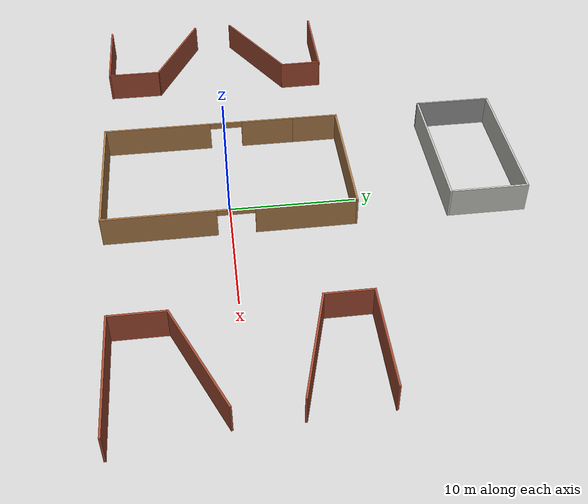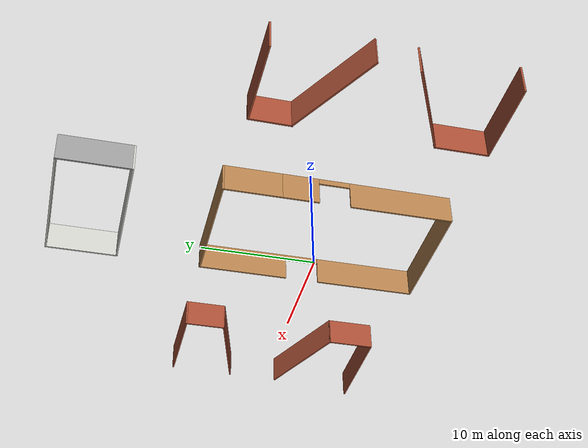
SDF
<?xml version='1.0'?>
<sdf version='1.7'>
  <model name='charusat'>
    <pose>-1.14724 6.68092 0 0 -0 0</pose>
    <link name='Wall_12'>
      <collision name='Wall_12_Collision'>
        <geometry>
          <box>
            <size>3.54796 0.15 2.5</size>
          </box>
        </geometry>
        <pose>0 0 1.25 0 -0 0</pose>
      </collision>
      <visual name='Wall_12_Visual'>
        <pose>0 0 1.25 0 -0 0</pose>
        <geometry>
          <box>
            <size>3.54796 0.15 2.5</size>
          </box>
        </geometry>
        <material>
          <script>
            <uri>file://media/materials/scripts/gazebo.material</uri>
            <name>Gazebo/Bricks</name>
          </script>
          <ambient>1 1 1 1</ambient>
        </material>
        <meta>
          <layer>0</layer>
        </meta>
      </visual>
      <pose>-15.2631 0.985248 0 0 -0 -1.55889</pose>
    </link>
    <link name='Wall_13'>
      <collision name='Wall_13_Collision'>
        <geometry>
          <box>
            <size>8.75 0.15 2.5</size>
          </box>
        </geometry>
        <pose>0 0 1.25 0 -0 0</pose>
      </collision>
      <visual name='Wall_13_Visual'>
        <pose>0 0 1.25 0 -0 0</pose>
        <geometry>
          <box>
            <size>8.75 0.15 2.5</size>
          </box>
        </geometry>
        <material>
          <script>
            <uri>file://media/materials/scripts/gazebo.material</uri>
            <name>Gazebo/Bricks</name>
          </script>
          <ambient>1 1 1 1</ambient>
        </material>
        <meta>
          <layer>0</layer>
        </meta>
      </visual>
      <pose>-19.0072 -2.86361 0 0 -0 -2.61799</pose>
    </link>
    <link name='Wall_16'>
      <collision name='Wall_16_Collision'>
        <geometry>
          <box>
            <size>4.5 0.15 2.5</size>
          </box>
        </geometry>
        <pose>0 0 1.25 0 -0 0</pose>
      </collision>
      <visual name='Wall_16_Visual'>
        <pose>0 0 1.25 0 -0 0</pose>
        <geometry>
          <box>
            <size>4.5 0.15 2.5</size>
          </box>
        </geometry>
        <material>
          <script>
            <uri>file://media/materials/scripts/gazebo.material</uri>
            <name>Gazebo/Bricks</name>
          </script>
          <ambient>1 1 1 1</ambient>
        </material>
        <meta>
          <layer>0</layer>
        </meta>
      </visual>
      <pose>-15.3222 -14.1198 0 0 -0 -1.5708</pose>
    </link>
    <link name='Wall_17'>
      <collision name='Wall_17_Collision'>
        <geometry>
          <box>
            <size>7.25 0.15 2.5</size>
          </box>
        </geometry>
        <pose>0 0 1.25 0 -0 0</pose>
      </collision>
      <visual name='Wall_17_Visual'>
        <pose>0 0 1.25 0 -0 0</pose>
        <geometry>
          <box>
            <size>7.25 0.15 2.5</size>
          </box>
        </geometry>
        <material>
          <script>
            <uri>file://media/materials/scripts/gazebo.material</uri>
            <name>Gazebo/Bricks</name>
          </script>
          <ambient>1 1 1 1</ambient>
        </material>
        <meta>
          <layer>0</layer>
        </meta>
      </visual>
      <pose>-18.8722 -16.2948 0 0 -0 3.14159</pose>
    </link>
    <link name='Wall_19'>
      <collision name='Wall_19_Collision'>
        <geometry>
          <box>
            <size>8.28342 0.15 2.5</size>
          </box>
        </geometry>
        <pose>0 0 1.25 0 -0 0</pose>
      </collision>
      <visual name='Wall_19_Visual'>
        <pose>0 0 1.25 0 -0 0</pose>
        <geometry>
          <box>
            <size>8.28342 0.15 2.5</size>
          </box>
        </geometry>
        <material>
          <script>
            <uri>file://media/materials/scripts/gazebo.material</uri>
            <name>Gazebo/Bricks</name>
          </script>
          <ambient>1 1 1 1</ambient>
        </material>
        <meta>
          <layer>0</layer>
        </meta>
      </visual>
      <pose>-18.9724 -10.1521 0 0 -0 -0.456495</pose>
    </link>
    <link name='Wall_21'>
      <collision name='Wall_21_Collision'>
        <geometry>
          <box>
            <size>6.25 0.15 2.5</size>
          </box>
        </geometry>
        <pose>0 0 1.25 0 -0 0</pose>
      </collision>
      <visual name='Wall_21_Visual'>
        <pose>0 0 1.25 0 -0 0</pose>
        <geometry>
          <box>
            <size>6.25 0.15 2.5</size>
          </box>
        </geometry>
        <material>
          <script>
            <uri>file://media/materials/scripts/gazebo.material</uri>
            <name>Gazebo/Grey</name>
          </script>
          <ambient>1 1 1 1</ambient>
        </material>
        <meta>
          <layer>0</layer>
        </meta>
      </visual>
      <pose>-7.73719 13.3304 0 0 -0 1.5708</pose>
    </link>
    <link name='Wall_22'>
      <collision name='Wall_22_Collision'>
        <geometry>
          <box>
            <size>11.75 0.15 2.5</size>
          </box>
        </geometry>
        <pose>0 0 1.25 0 -0 0</pose>
      </collision>
      <visual name='Wall_22_Visual'>
        <pose>0 0 1.25 0 -0 0</pose>
        <geometry>
          <box>
            <size>11.75 0.15 2.5</size>
          </box>
        </geometry>
        <material>
          <script>
            <uri>file://media/materials/scripts/gazebo.material</uri>
            <name>Gazebo/CeilingTiled</name>
          </script>
          <ambient>1 1 1 1</ambient>
        </material>
        <meta>
          <layer>0</layer>
        </meta>
      </visual>
      <pose>-1.93719 16.3804 0 0 -0 0</pose>
    </link>
    <link name='Wall_23'>
      <collision name='Wall_23_Collision'>
        <geometry>
          <box>
            <size>6.25 0.15 2.5</size>
          </box>
        </geometry>
        <pose>0 0 1.25 0 -0 0</pose>
      </collision>
      <visual name='Wall_23_Visual'>
        <pose>0 0 1.25 0 -0 0</pose>
        <geometry>
          <box>
            <size>6.25 0.15 2.5</size>
          </box>
        </geometry>
        <material>
          <script>
            <uri>file://media/materials/scripts/gazebo.material</uri>
            <name>Gazebo/CeilingTiled</name>
          </script>
          <ambient>1 1 1 1</ambient>
        </material>
        <meta>
          <layer>0</layer>
        </meta>
      </visual>
      <pose>3.86281 13.3304 0 0 -0 -1.5708</pose>
    </link>
    <link name='Wall_24'>
      <collision name='Wall_24_Collision'>
        <geometry>
          <box>
            <size>11.75 0.15 2.5</size>
          </box>
        </geometry>
        <pose>0 0 1.25 0 -0 0</pose>
      </collision>
      <visual name='Wall_24_Visual'>
        <pose>0 0 1.25 0 -0 0</pose>
        <geometry>
          <box>
            <size>11.75 0.15 2.5</size>
          </box>
        </geometry>
        <material>
          <script>
            <uri>file://media/materials/scripts/gazebo.material</uri>
            <name>Gazebo/CeilingTiled</name>
          </script>
          <ambient>1 1 1 1</ambient>
        </material>
        <meta>
          <layer>0</layer>
        </meta>
      </visual>
      <pose>-1.93719 10.2804 0 0 -0 3.14159</pose>
    </link>
    <link name='Wall_26'>
      <collision name='Wall_26_Collision'>
        <geometry>
          <box>
            <size>8.25 0.15 2.5</size>
          </box>
        </geometry>
        <pose>0 0 1.25 0 -0 0</pose>
      </collision>
      <visual name='Wall_26_Visual'>
        <pose>0 0 1.25 0 -0 0</pose>
        <geometry>
          <box>
            <size>8.25 0.15 2.5</size>
          </box>
        </geometry>
        <material>
          <script>
            <uri>file://media/materials/scripts/gazebo.material</uri>
            <name>Gazebo/Bricks</name>
          </script>
          <ambient>1 1 1 1</ambient>
        </material>
        <meta>
          <layer>0</layer>
        </meta>
      </visual>
      <pose>17.219 2.61548 0 0 -0 3.14159</pose>
    </link>
    <link name='Wall_27'>
      <collision name='Wall_27_Collision'>
        <geometry>
          <box>
            <size>3.75 0.15 2.5</size>
          </box>
        </geometry>
        <pose>0 0 1.25 0 -0 0</pose>
      </collision>
      <visual name='Wall_27_Visual'>
        <pose>0 0 1.25 0 -0 0</pose>
        <geometry>
          <box>
            <size>3.75 0.15 2.5</size>
          </box>
        </geometry>
        <material>
          <script>
            <uri>file://media/materials/scripts/gazebo.material</uri>
            <name>Gazebo/Bricks</name>
          </script>
          <ambient>1 1 1 1</ambient>
        </material>
        <meta>
          <layer>0</layer>
        </meta>
      </visual>
      <pose>13.169 0.815483 0 0 -0 -1.5708</pose>
    </link>
    <link name='Wall_28'>
      <collision name='Wall_28_Collision'>
        <geometry>
          <box>
            <size>8.75 0.15 2.5</size>
          </box>
        </geometry>
        <pose>0 0 1.25 0 -0 0</pose>
      </collision>
      <visual name='Wall_28_Visual'>
        <pose>0 0 1.25 0 -0 0</pose>
        <geometry>
          <box>
            <size>8.75 0.15 2.5</size>
          </box>
        </geometry>
        <material>
          <script>
            <uri>file://media/materials/scripts/gazebo.material</uri>
            <name>Gazebo/Bricks</name>
          </script>
          <ambient>1 1 1 1</ambient>
        </material>
        <meta>
          <layer>0</layer>
        </meta>
      </visual>
      <pose>17.3225 -2.09744 0 0 -0 -0.261799</pose>
    </link>
    <link name='Wall_3'>
      <pose>-6.95061 -8.58039 0 0 -0 -1.5708</pose>
      <visual name='Wall_3_Visual_0'>
        <pose>-5.69935 0 1.25 0 -0 0</pose>
        <geometry>
          <box>
            <size>4.3513 0.15 2.5</size>
          </box>
        </geometry>
        <material>
          <script>
            <uri>file://media/materials/scripts/gazebo.material</uri>
            <name>Gazebo/Wood</name>
          </script>
          <ambient>1 1 1 1</ambient>
        </material>
        <meta>
          <layer>0</layer>
        </meta>
      </visual>
      <collision name='Wall_3_Collision_0'>
        <geometry>
          <box>
            <size>4.3513 0.15 2.5</size>
          </box>
        </geometry>
        <pose>-5.69935 0 1.25 0 -0 0</pose>
      </collision>
      <visual name='Wall_3_Visual_1'>
        <pose>3.48528 0 1.25 0 -0 0</pose>
        <geometry>
          <box>
            <size>8.77945 0.15 2.5</size>
          </box>
        </geometry>
        <material>
          <script>
            <uri>file://media/materials/scripts/gazebo.material</uri>
            <name>Gazebo/Wood</name>
          </script>
          <ambient>1 1 1 1</ambient>
        </material>
        <meta>
          <layer>0</layer>
        </meta>
      </visual>
      <collision name='Wall_3_Collision_1'>
        <geometry>
          <box>
            <size>8.77945 0.15 2.5</size>
          </box>
        </geometry>
        <pose>3.48528 0 1.25 0 -0 0</pose>
      </collision>
      <visual name='Wall_3_Visual_2'>
        <pose>-2.21408 0 2.25 0 -0 0</pose>
        <geometry>
          <box>
            <size>2.61925 0.15 0.5</size>
          </box>
        </geometry>
        <material>
          <script>
            <uri>file://media/materials/scripts/gazebo.material</uri>
            <name>Gazebo/Wood</name>
          </script>
          <ambient>1 1 1 1</ambient>
        </material>
        <meta>
          <layer>0</layer>
        </meta>
      </visual>
      <collision name='Wall_3_Collision_2'>
        <geometry>
          <box>
            <size>2.61925 0.15 0.5</size>
          </box>
        </geometry>
        <pose>-2.21408 0 2.25 0 -0 0</pose>
      </collision>
    </link>
    <link name='Wall_30'>
      <collision name='Wall_30_Collision'>
        <geometry>
          <box>
            <size>4.25 0.15 2.5</size>
          </box>
        </geometry>
        <pose>0 0 1.25 0 -0 0</pose>
      </collision>
      <visual name='Wall_30_Visual'>
        <pose>0 0 1.25 0 -0 0</pose>
        <geometry>
          <box>
            <size>4.25 0.15 2.5</size>
          </box>
        </geometry>
        <material>
          <script>
            <uri>file://media/materials/scripts/gazebo.material</uri>
            <name>Gazebo/Bricks</name>
          </script>
          <ambient>1 1 1 1</ambient>
        </material>
        <meta>
          <layer>0</layer>
        </meta>
      </visual>
      <pose>13.4086 -13.5645 0 0 -0 -1.5708</pose>
    </link>
    <link name='Wall_31'>
      <collision name='Wall_31_Collision'>
        <geometry>
          <box>
            <size>9.5 0.15 2.5</size>
          </box>
        </geometry>
        <pose>0 0 1.25 0 -0 0</pose>
      </collision>
      <visual name='Wall_31_Visual'>
        <pose>0 0 1.25 0 -0 0</pose>
        <geometry>
          <box>
            <size>9.5 0.15 2.5</size>
          </box>
        </geometry>
        <material>
          <script>
            <uri>file://media/materials/scripts/gazebo.material</uri>
            <name>Gazebo/Bricks</name>
          </script>
          <ambient>1 1 1 1</ambient>
        </material>
        <meta>
          <layer>0</layer>
        </meta>
      </visual>
      <pose>18.0836 -15.6145 0 0 -0 0</pose>
    </link>
    <link name='Wall_39'>
      <collision name='Wall_39_Collision'>
        <geometry>
          <box>
            <size>9.02569 0.15 2.5</size>
          </box>
        </geometry>
        <pose>0 0 1.25 0 -0 0</pose>
      </collision>
      <visual name='Wall_39_Visual'>
        <pose>0 0 1.25 0 -0 0</pose>
        <geometry>
          <box>
            <size>9.02569 0.15 2.5</size>
          </box>
        </geometry>
        <material>
          <script>
            <uri>file://media/materials/scripts/gazebo.material</uri>
            <name>Gazebo/Bricks</name>
          </script>
          <ambient>1 1 1 1</ambient>
        </material>
        <meta>
          <layer>0</layer>
        </meta>
      </visual>
      <pose>17.4596 -9.70242 0 0 -0 -2.72097</pose>
    </link>
    <link name='Wall_4'>
      <collision name='Wall_4_Collision'>
        <geometry>
          <box>
            <size>11 0.15 2.5</size>
          </box>
        </geometry>
        <pose>0 0 1.25 0 -0 0</pose>
      </collision>
      <visual name='Wall_4_Visual'>
        <pose>0 0 1.25 0 -0 0</pose>
        <geometry>
          <box>
            <size>11 0.15 2.5</size>
          </box>
        </geometry>
        <material>
          <script>
            <uri>file://media/materials/scripts/gazebo.material</uri>
            <name>Gazebo/Wood</name>
          </script>
          <ambient>1 1 1 1</ambient>
        </material>
        <meta>
          <layer>0</layer>
        </meta>
      </visual>
      <pose>-1.52561 -16.3804 0 0 -0 0</pose>
    </link>
    <link name='Wall_5'>
      <pose>3.8994 -6.70539 0 0 -0 1.5708</pose>
      <visual name='Wall_5_Visual_0'>
        <pose>-5.37933 0 1.25 0 -0 0</pose>
        <geometry>
          <box>
            <size>8.74134 0.15 2.5</size>
          </box>
        </geometry>
        <material>
          <script>
            <uri>file://media/materials/scripts/gazebo.material</uri>
            <name>Gazebo/Wood</name>
          </script>
          <ambient>1 1 1 1</ambient>
        </material>
        <meta>
          <layer>0</layer>
        </meta>
      </visual>
      <collision name='Wall_5_Collision_0'>
        <geometry>
          <box>
            <size>8.74134 0.15 2.5</size>
          </box>
        </geometry>
        <pose>-5.37933 0 1.25 0 -0 0</pose>
      </collision>
      <visual name='Wall_5_Visual_1'>
        <pose>5.81916 0 1.25 0 -0 0</pose>
        <geometry>
          <box>
            <size>7.86169 0.15 2.5</size>
          </box>
        </geometry>
        <material>
          <script>
            <uri>file://media/materials/scripts/gazebo.material</uri>
            <name>Gazebo/Wood</name>
          </script>
          <ambient>1 1 1 1</ambient>
        </material>
        <meta>
          <layer>0</layer>
        </meta>
      </visual>
      <collision name='Wall_5_Collision_1'>
        <geometry>
          <box>
            <size>7.86169 0.15 2.5</size>
          </box>
        </geometry>
        <pose>5.81916 0 1.25 0 -0 0</pose>
      </collision>
      <visual name='Wall_5_Visual_2'>
        <pose>0.439824 0 2.25 0 -0 0</pose>
        <geometry>
          <box>
            <size>2.89697 0.15 0.5</size>
          </box>
        </geometry>
        <material>
          <script>
            <uri>file://media/materials/scripts/gazebo.material</uri>
            <name>Gazebo/Wood</name>
          </script>
          <ambient>1 1 1 1</ambient>
        </material>
        <meta>
          <layer>0</layer>
        </meta>
      </visual>
      <collision name='Wall_5_Collision_2'>
        <geometry>
          <box>
            <size>2.89697 0.15 0.5</size>
          </box>
        </geometry>
        <pose>0.439824 0 2.25 0 -0 0</pose>
      </collision>
    </link>
    <link name='Wall_6'>
      <collision name='Wall_6_Collision'>
        <geometry>
          <box>
            <size>11 0.15 2.5</size>
          </box>
        </geometry>
        <pose>0 0 1.25 0 -0 0</pose>
      </collision>
      <visual name='Wall_6_Visual'>
        <pose>0 0 1.25 0 -0 0</pose>
        <geometry>
          <box>
            <size>11 0.15 2.5</size>
          </box>
        </geometry>
        <material>
          <script>
            <uri>file://media/materials/scripts/gazebo.material</uri>
            <name>Gazebo/Wood</name>
          </script>
          <ambient>1 1 1 1</ambient>
        </material>
        <meta>
          <layer>0</layer>
        </meta>
      </visual>
      <pose>-1.52561 2.96961 0 0 -0 3.14159</pose>
    </link>
    <link name='Wall_7'>
      <collision name='Wall_7_Collision'>
        <geometry>
          <box>
            <size>5 0.15 2.5</size>
          </box>
        </geometry>
        <pose>0 0 1.25 0 -0 0</pose>
      </collision>
      <visual name='Wall_7_Visual'>
        <pose>0 0 1.25 0 -0 0</pose>
        <geometry>
          <box>
            <size>5 0.15 2.5</size>
          </box>
        </geometry>
        <material>
          <script>
            <uri>file://media/materials/scripts/gazebo.material</uri>
            <name>Gazebo/Wood</name>
          </script>
          <ambient>1 1 1 1</ambient>
        </material>
        <meta>
          <layer>0</layer>
        </meta>
      </visual>
      <pose>-6.95061 0.544613 0 0 -0 -1.5708</pose>
    </link>
    <link name='Wall_9'>
      <collision name='Wall_9_Collision'>
        <geometry>
          <box>
            <size>7.5 0.15 2.5</size>
          </box>
        </geometry>
        <pose>0 0 1.25 0 -0 0</pose>
      </collision>
      <visual name='Wall_9_Visual'>
        <pose>0 0 1.25 0 -0 0</pose>
        <geometry>
          <box>
            <size>7.5 0.15 2.5</size>
          </box>
        </geometry>
        <material>
          <script>
            <uri>file://media/materials/scripts/gazebo.material</uri>
            <name>Gazebo/Bricks</name>
          </script>
          <ambient>1 1 1 1</ambient>
        </material>
        <meta>
          <layer>0</layer>
        </meta>
      </visual>
      <pose>-18.9583 2.68411 0 0 -0 0</pose>
    </link>
    <static>1</static>
  </model>
</sdf>
